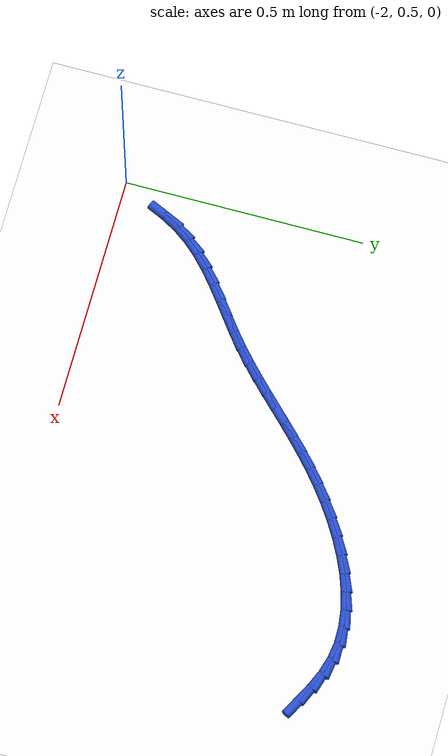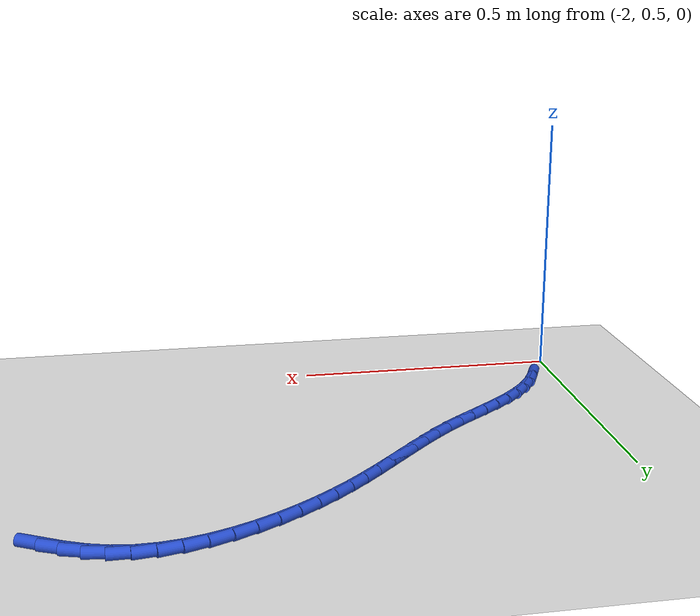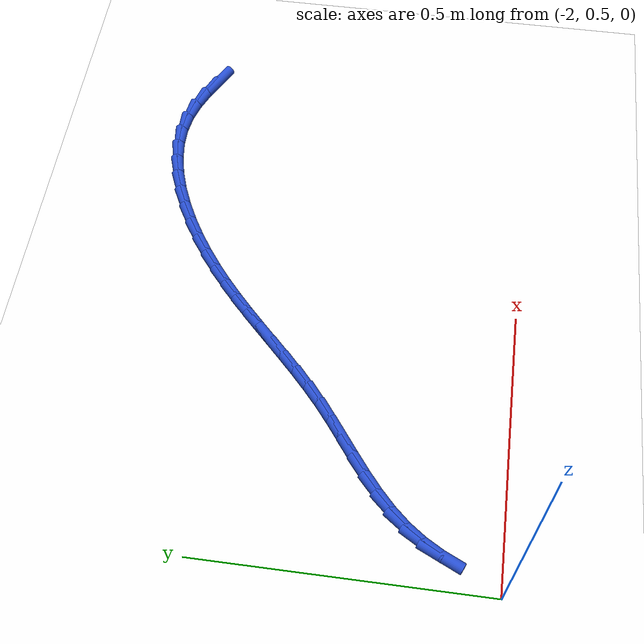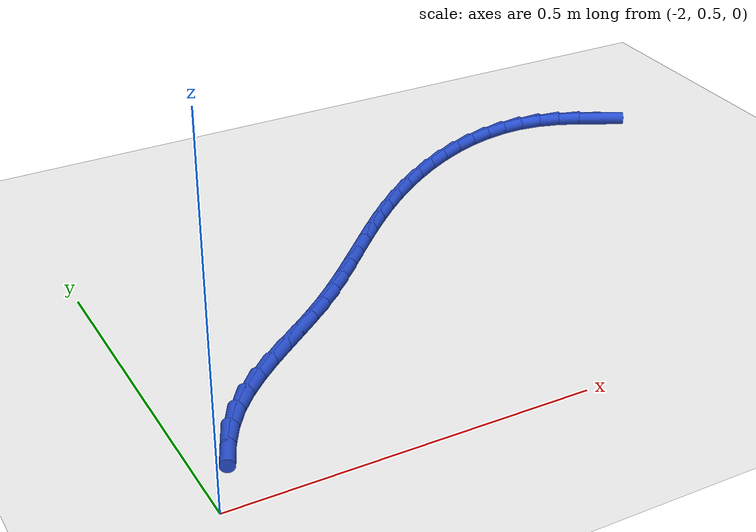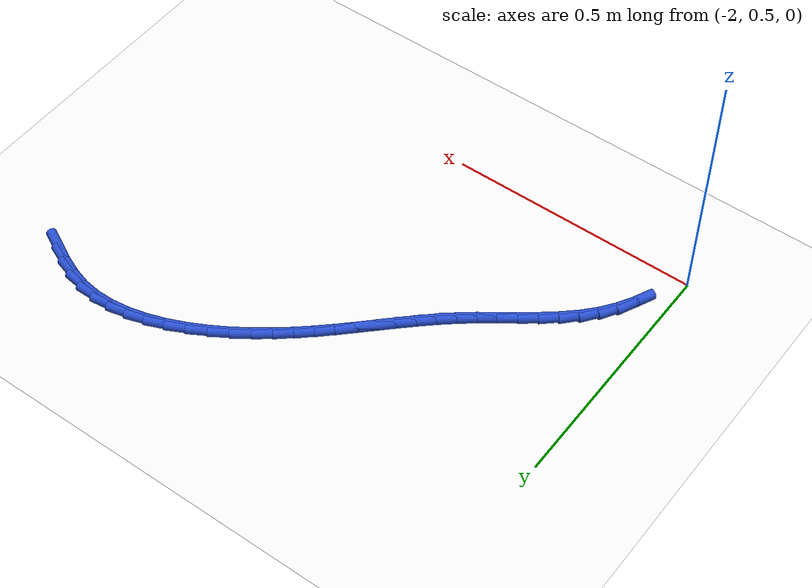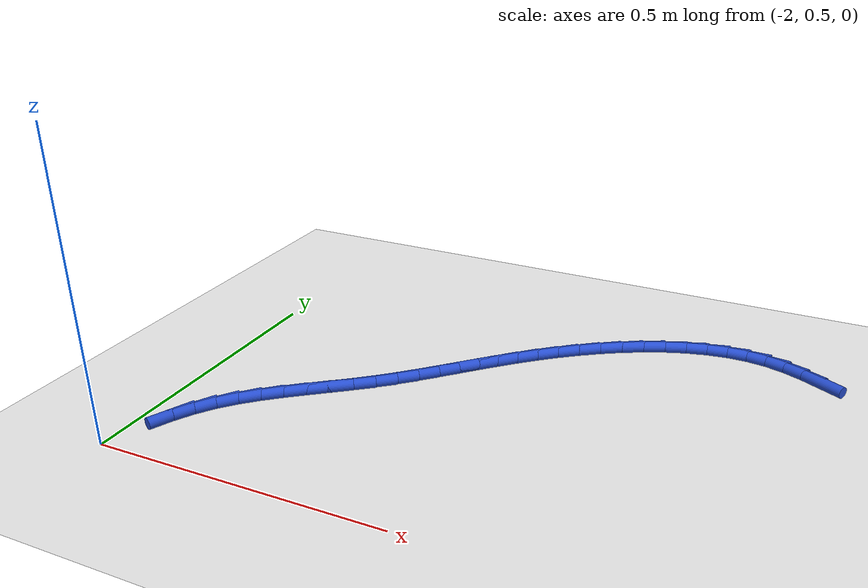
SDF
<sdf version="1.6">
 <world name="default">
  <model name="ground_plane">
   <static>1</static>
   <link name="link">
    <collision name="collision">
     <geometry><plane><normal>0 0 1</normal><size>100 100</size></plane></geometry>
     <surface><friction><ode><mu>100</mu><mu2>50</mu2></ode></friction></surface>
    </collision>
    <visual name="visual">
     <cast_shadows>0</cast_shadows>
     <geometry><plane><normal>0 0 1</normal><size>100 100</size></plane></geometry>
     <material>
      <script><uri>file://media/materials/scripts/gazebo.material</uri><name>Gazebo/WhiteGlow</name></script>
     </material>
    </visual>
   </link>
  </model>
  <model name="line">
   <link name="link_47">
    <pose>-1.029045256913383 1.1278854731643875 0.01 0 1.57 -0.4810699358292078</pose>
    <collision name="collision">
     <geometry><cylinder><radius>0.01</radius><length>0.08</length></cylinder></geometry>
    </collision>
    <visual name="visual">
     <material>
      <script><name>Gazebo/Blue</name><uri>file://media/materials/scripts/gazebo.material</uri></script>
     </material>
     <geometry><cylinder><radius>0.01</radius><length>0.08</length></cylinder></geometry>
    </visual>
   </link>
   <link name="link_48">
    <pose>-1.0612457077166029 1.1446931917118084 0.01 0 1.57 -0.4007255364006845</pose>
    <collision name="collision">
     <geometry><cylinder><radius>0.01</radius><length>0.08</length></cylinder></geometry>
    </collision>
    <visual name="visual">
     <material>
      <script><name>Gazebo/Blue</name><uri>file://media/materials/scripts/gazebo.material</uri></script>
     </material>
     <geometry><cylinder><radius>0.01</radius><length>0.08</length></cylinder></geometry>
    </visual>
   </link>
   <link name="link_49">
    <pose>-1.0938840219141255 1.1585203714287102 0.01 0 1.57 -0.2833642600836688</pose>
    <collision name="collision">
     <geometry><cylinder><radius>0.01</radius><length>0.08</length></cylinder></geometry>
    </collision>
    <visual name="visual">
     <material>
      <script><name>Gazebo/Blue</name><uri>file://media/materials/scripts/gazebo.material</uri></script>
     </material>
     <geometry><cylinder><radius>0.01</radius><length>0.08</length></cylinder></geometry>
    </visual>
   </link>
   <link name="link_50">
    <pose>-1.1272439422356908 1.168234790533083 0.01 0 1.57 -0.1348694033147934</pose>
    <collision name="collision">
     <geometry><cylinder><radius>0.01</radius><length>0.08</length></cylinder></geometry>
    </collision>
    <visual name="visual">
     <material>
      <script><name>Gazebo/Blue</name><uri>file://media/materials/scripts/gazebo.material</uri></script>
     </material>
     <geometry><cylinder><radius>0.01</radius><length>0.08</length></cylinder></geometry>
    </visual>
   </link>
   <link name="link_51">
    <pose>-1.1615433456143536 1.172888984431039 0.01 0 1.57 0.008827553071048792</pose>
    <collision name="collision">
     <geometry><cylinder><radius>0.01</radius><length>0.08</length></cylinder></geometry>
    </collision>
    <visual name="visual">
     <material>
      <script><name>Gazebo/Blue</name><uri>file://media/materials/scripts/gazebo.material</uri></script>
     </material>
     <geometry><cylinder><radius>0.01</radius><length>0.08</length></cylinder></geometry>
    </visual>
   </link>
   <link name="link_52">
    <pose>-1.196628003571907 1.172579264705856 0.01 0 1.57 0.13438621315433963</pose>
    <collision name="collision">
     <geometry><cylinder><radius>0.01</radius><length>0.08</length></cylinder></geometry>
    </collision>
    <visual name="visual">
     <material>
      <script><name>Gazebo/Blue</name><uri>file://media/materials/scripts/gazebo.material</uri></script>
     </material>
     <geometry><cylinder><radius>0.01</radius><length>0.08</length></cylinder></geometry>
    </visual>
   </link>
   <link name="link_53">
    <pose>-1.2322131477729057 1.1677681144315575 0.01 0 1.57 0.2423354071631003</pose>
    <collision name="collision">
     <geometry><cylinder><radius>0.01</radius><length>0.08</length></cylinder></geometry>
    </collision>
    <visual name="visual">
     <material>
      <script><name>Gazebo/Blue</name><uri>file://media/materials/scripts/gazebo.material</uri></script>
     </material>
     <geometry><cylinder><radius>0.01</radius><length>0.08</length></cylinder></geometry>
    </visual>
   </link>
   <link name="link_54">
    <pose>-1.268013868620136 1.1589184129292132 0.01 0 1.57 0.33466354929036196</pose>
    <collision name="collision">
     <geometry><cylinder><radius>0.01</radius><length>0.08</length></cylinder></geometry>
    </collision>
    <visual name="visual">
     <material>
      <script><name>Gazebo/Blue</name><uri>file://media/materials/scripts/gazebo.material</uri></script>
     </material>
     <geometry><cylinder><radius>0.01</radius><length>0.08</length></cylinder></geometry>
    </visual>
   </link>
   <link name="link_55">
    <pose>-1.3037452565163834 1.146493039519893 0.01 0 1.57 0.4138488465739483</pose>
    <collision name="collision">
     <geometry><cylinder><radius>0.01</radius><length>0.08</length></cylinder></geometry>
    </collision>
    <visual name="visual">
     <material>
      <script><name>Gazebo/Blue</name><uri>file://media/materials/scripts/gazebo.material</uri></script>
     </material>
     <geometry><cylinder><radius>0.01</radius><length>0.08</length></cylinder></geometry>
    </visual>
   </link>
   <link name="link_56">
    <pose>-1.3391224018644323 1.1309548735246664 0.01 0 1.57 0.48233228513844634</pose>
    <collision name="collision">
     <geometry><cylinder><radius>0.01</radius><length>0.08</length></cylinder></geometry>
    </collision>
    <visual name="visual">
     <material>
      <script><name>Gazebo/Blue</name><uri>file://media/materials/scripts/gazebo.material</uri></script>
     </material>
     <geometry><cylinder><radius>0.01</radius><length>0.08</length></cylinder></geometry>
    </visual>
   </link>
   <link name="link_57">
    <pose>-1.3738603950670685 1.1127667942646033 0.01 0 1.57 0.5423038640991938</pose>
    <collision name="collision">
     <geometry><cylinder><radius>0.01</radius><length>0.08</length></cylinder></geometry>
    </collision>
    <visual name="visual">
     <material>
      <script><name>Gazebo/Blue</name><uri>file://media/materials/scripts/gazebo.material</uri></script>
     </material>
     <geometry><cylinder><radius>0.01</radius><length>0.08</length></cylinder></geometry>
    </visual>
   </link>
   <link name="link_58">
    <pose>-1.4076743265270772 1.0923916810607734 0.01 0 1.57 0.5956628795325257</pose>
    <collision name="collision">
     <geometry><cylinder><radius>0.01</radius><length>0.08</length></cylinder></geometry>
    </collision>
    <visual name="visual">
     <material>
      <script><name>Gazebo/Blue</name><uri>file://media/materials/scripts/gazebo.material</uri></script>
     </material>
     <geometry><cylinder><radius>0.01</radius><length>0.08</length></cylinder></geometry>
    </visual>
   </link>
   <link name="link_59">
    <pose>-1.4402792866472434 1.0702924132342468 0.01 0 1.57 0.6440611109630304</pose>
    <collision name="collision">
     <geometry><cylinder><radius>0.01</radius><length>0.08</length></cylinder></geometry>
    </collision>
    <visual name="visual">
     <material>
      <script><name>Gazebo/Blue</name><uri>file://media/materials/scripts/gazebo.material</uri></script>
     </material>
     <geometry><cylinder><radius>0.01</radius><length>0.08</length></cylinder></geometry>
    </visual>
   </link>
   <link name="link_60">
    <pose>-1.4713903658303535 1.046931870106093 0.01 0 1.57 0.6882938133641108</pose>
    <collision name="collision">
     <geometry><cylinder><radius>0.01</radius><length>0.08</length></cylinder></geometry>
    </collision>
    <visual name="visual">
     <material>
      <script><name>Gazebo/Blue</name><uri>file://media/materials/scripts/gazebo.material</uri></script>
     </material>
     <geometry><cylinder><radius>0.01</radius><length>0.08</length></cylinder></geometry>
    </visual>
   </link>
   <link name="link_61">
    <pose>-1.5008133917872155 1.0227322630536195 0.01 0 1.57 0.725675912529105</pose>
    <collision name="collision">
     <geometry><cylinder><radius>0.01</radius><length>0.08</length></cylinder></geometry>
    </collision>
    <visual name="visual">
     <material>
      <script><name>Gazebo/Blue</name><uri>file://media/materials/scripts/gazebo.material</uri></script>
     </material>
     <geometry><cylinder><radius>0.01</radius><length>0.08</length></cylinder></geometry>
    </visual>
   </link>
   <link name="link_62">
    <pose>-1.5287718862780761 0.9979285953642972 0.01 0 1.57 0.7544646948901811</pose>
    <collision name="collision">
     <geometry><cylinder><radius>0.01</radius><length>0.08</length></cylinder></geometry>
    </collision>
    <visual name="visual">
     <material>
      <script><name>Gazebo/Blue</name><uri>file://media/materials/scripts/gazebo.material</uri></script>
     </material>
     <geometry><cylinder><radius>0.01</radius><length>0.08</length></cylinder></geometry>
    </visual>
   </link>
   <link name="link_63">
    <pose>-1.5556094841788022 0.972702036312472 0.01 0 1.57 0.7739087278106418</pose>
    <collision name="collision">
     <geometry><cylinder><radius>0.01</radius><length>0.08</length></cylinder></geometry>
    </collision>
    <visual name="visual">
     <material>
      <script><name>Gazebo/Blue</name><uri>file://media/materials/scripts/gazebo.material</uri></script>
     </material>
     <geometry><cylinder><radius>0.01</radius><length>0.08</length></cylinder></geometry>
    </visual>
   </link>
   <link name="link_64">
    <pose>-1.5816698310824684 0.9472337503690967 0.01 0 1.57 0.7834845305671589</pose>
    <collision name="collision">
     <geometry><cylinder><radius>0.01</radius><length>0.08</length></cylinder></geometry>
    </collision>
    <visual name="visual">
     <material>
      <script><name>Gazebo/Blue</name><uri>file://media/materials/scripts/gazebo.material</uri></script>
     </material>
     <geometry><cylinder><radius>0.01</radius><length>0.08</length></cylinder></geometry>
    </visual>
   </link>
   <link name="link_65">
    <pose>-1.6072965725821504 0.9217049020051252 0.01 0 1.57 0.7828751477575939</pose>
    <collision name="collision">
     <geometry><cylinder><radius>0.01</radius><length>0.08</length></cylinder></geometry>
    </collision>
    <visual name="visual">
     <material>
      <script><name>Gazebo/Blue</name><uri>file://media/materials/scripts/gazebo.material</uri></script>
     </material>
     <geometry><cylinder><radius>0.01</radius><length>0.08</length></cylinder></geometry>
    </visual>
   </link>
   <link name="link_66">
    <pose>-1.6328333542709224 0.8962966556915115 0.01 0 1.57 0.7719602944434932</pose>
    <collision name="collision">
     <geometry><cylinder><radius>0.01</radius><length>0.08</length></cylinder></geometry>
    </collision>
    <visual name="visual">
     <material>
      <script><name>Gazebo/Blue</name><uri>file://media/materials/scripts/gazebo.material</uri></script>
     </material>
     <geometry><cylinder><radius>0.01</radius><length>0.08</length></cylinder></geometry>
    </visual>
   </link>
   <link name="link_67">
    <pose>-1.6586238217418603 0.8711901758992088 0.01 0 1.57 0.7508265005349857</pose>
    <collision name="collision">
     <geometry><cylinder><radius>0.01</radius><length>0.08</length></cylinder></geometry>
    </collision>
    <visual name="visual">
     <material>
      <script><name>Gazebo/Blue</name><uri>file://media/materials/scripts/gazebo.material</uri></script>
     </material>
     <geometry><cylinder><radius>0.01</radius><length>0.08</length></cylinder></geometry>
    </visual>
   </link>
   <link name="link_68">
    <pose>-1.6850116205880386 0.8465666270991707 0.01 0 1.57 0.7197985498542236</pose>
    <collision name="collision">
     <geometry><cylinder><radius>0.01</radius><length>0.08</length></cylinder></geometry>
    </collision>
    <visual name="visual">
     <material>
      <script><name>Gazebo/Blue</name><uri>file://media/materials/scripts/gazebo.material</uri></script>
     </material>
     <geometry><cylinder><radius>0.01</radius><length>0.08</length></cylinder></geometry>
    </visual>
   </link>
   <link name="link_69">
    <pose>-1.7123403964025323 0.8226071737623512 0.01 0 1.57 0.6804805687634148</pose>
    <collision name="collision">
     <geometry><cylinder><radius>0.01</radius><length>0.08</length></cylinder></geometry>
    </collision>
    <visual name="visual">
     <material>
      <script><name>Gazebo/Blue</name><uri>file://media/materials/scripts/gazebo.material</uri></script>
     </material>
     <geometry><cylinder><radius>0.01</radius><length>0.08</length></cylinder></geometry>
    </visual>
   </link>
   <link name="link_70">
    <pose>-1.7409207975994136 0.7994725818736622 0.01 0 1.57 0.6499449687900314</pose>
    <collision name="collision">
     <geometry><cylinder><radius>0.01</radius><length>0.08</length></cylinder></geometry>
    </collision>
    <visual name="visual">
     <material>
      <script><name>Gazebo/Blue</name><uri>file://media/materials/scripts/gazebo.material</uri></script>
     </material>
     <geometry><cylinder><radius>0.01</radius><length>0.08</length></cylinder></geometry>
    </visual>
   </link>
   <link name="link_71">
    <pose>-1.7705098856753032 0.7769813961933696 0.01 0 1.57 0.6411658764219705</pose>
    <collision name="collision">
     <geometry><cylinder><radius>0.01</radius><length>0.08</length></cylinder></geometry>
    </collision>
    <visual name="visual">
     <material>
      <script><name>Gazebo/Blue</name><uri>file://media/materials/scripts/gazebo.material</uri></script>
     </material>
     <geometry><cylinder><radius>0.01</radius><length>0.08</length></cylinder></geometry>
    </visual>
   </link>
   <link name="link_72">
    <pose>-1.8004057217242546 0.7546684125799343 0.01 0 1.57 0.6541261754685944</pose>
    <collision name="collision">
     <geometry><cylinder><radius>0.01</radius><length>0.08</length></cylinder></geometry>
    </collision>
    <visual name="visual">
     <material>
      <script><name>Gazebo/Blue</name><uri>file://media/materials/scripts/gazebo.material</uri></script>
     </material>
     <geometry><cylinder><radius>0.01</radius><length>0.08</length></cylinder></geometry>
    </visual>
   </link>
   <link name="link_73">
    <pose>-1.8298924953954614 0.7320598517201561 0.01 0 1.57 0.6893666464556728</pose>
    <collision name="collision">
     <geometry><cylinder><radius>0.01</radius><length>0.08</length></cylinder></geometry>
    </collision>
    <visual name="visual">
     <material>
      <script><name>Gazebo/Blue</name><uri>file://media/materials/scripts/gazebo.material</uri></script>
     </material>
     <geometry><cylinder><radius>0.01</radius><length>0.08</length></cylinder></geometry>
    </visual>
   </link>
   <link name="link_74">
    <pose>-1.8582543963381193 0.7086819343008336 0.01 0 1.57 0.7482607643806226</pose>
    <collision name="collision">
     <geometry><cylinder><radius>0.01</radius><length>0.08</length></cylinder></geometry>
    </collision>
    <visual name="visual">
     <material>
      <script><name>Gazebo/Blue</name><uri>file://media/materials/scripts/gazebo.material</uri></script>
     </material>
     <geometry><cylinder><radius>0.01</radius><length>0.08</length></cylinder></geometry>
    </visual>
   </link>
   <link name="link_75">
    <pose>-1.884775614201423 0.6840608810087662 0.01 0 1.57 0.8325424692199745</pose>
    <collision name="collision">
     <geometry><cylinder><radius>0.01</radius><length>0.08</length></cylinder></geometry>
    </collision>
    <visual name="visual">
     <material>
      <script><name>Gazebo/Blue</name><uri>file://media/materials/scripts/gazebo.material</uri></script>
     </material>
     <geometry><cylinder><radius>0.01</radius><length>0.08</length></cylinder></geometry>
    </visual>
   </link>
   <link name="link_76">
    <pose>-1.9087403386345663 0.6577229125307534 0.01 0 1.57 0.9403603623094907</pose>
    <collision name="collision">
     <geometry><cylinder><radius>0.01</radius><length>0.08</length></cylinder></geometry>
    </collision>
    <visual name="visual">
     <material>
      <script><name>Gazebo/Blue</name><uri>file://media/materials/scripts/gazebo.material</uri></script>
     </material>
     <geometry><cylinder><radius>0.01</radius><length>0.08</length></cylinder></geometry>
    </visual>
   </link>
   <link name="link_77">
    <pose>-1.9295178760421683 0.6292520563337846 0.01 0 1.57 1.0472479316627132</pose>
    <collision name="collision">
     <geometry><cylinder><radius>0.01</radius><length>0.08</length></cylinder></geometry>
    </collision>
    <visual name="visual">
     <material>
      <script><name>Gazebo/Blue</name><uri>file://media/materials/scripts/gazebo.material</uri></script>
     </material>
     <geometry><cylinder><radius>0.01</radius><length>0.08</length></cylinder></geometry>
    </visual>
   </link>
   <link name="link_78">
    <pose>-1.9471581796278907 0.5986945990452689 0.01 0 1.57 1.1400008952900078</pose>
    <collision name="collision">
     <geometry><cylinder><radius>0.01</radius><length>0.08</length></cylinder></geometry>
    </collision>
    <visual name="visual">
     <material>
      <script><name>Gazebo/Blue</name><uri>file://media/materials/scripts/gazebo.material</uri></script>
     </material>
     <geometry><cylinder><radius>0.01</radius><length>0.08</length></cylinder></geometry>
    </visual>
   </link>
  </model>
 </world>
</sdf>
